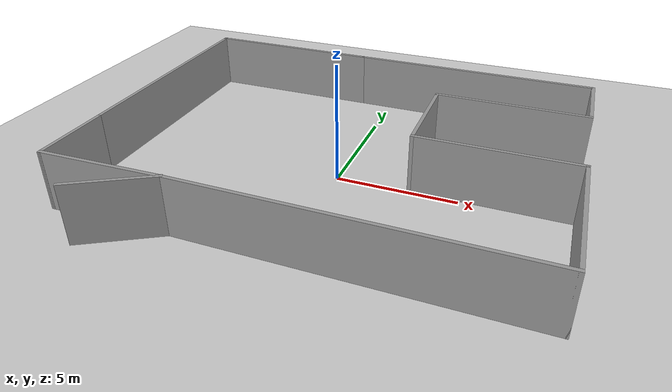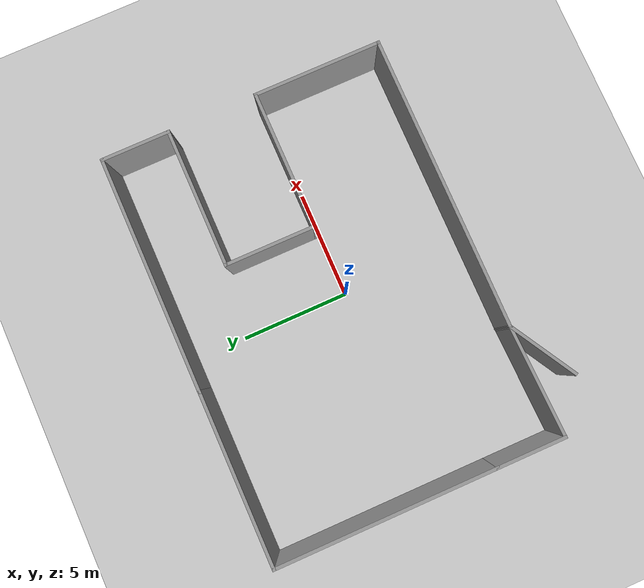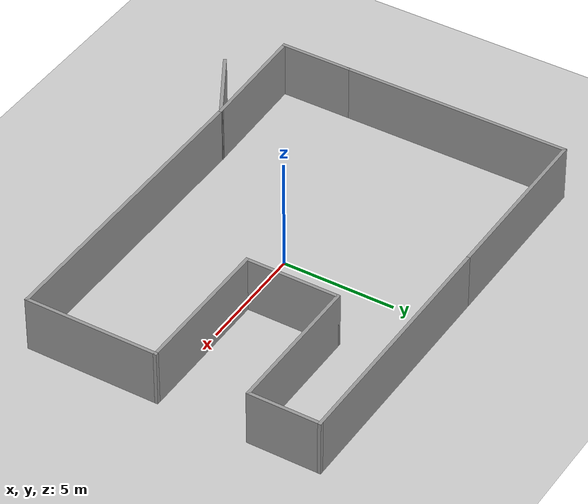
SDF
<?xml version="1.0" ?>
<sdf version="1.5">
  <world name="default">
    <!-- A global light source -->
    <include>
      <uri>model://sun</uri>
    </include>
<!-- A ground plane -->
    <include>
      <uri>model://ground_plane</uri>
    </include>
    <!-- include orchard model-->
    <include>
      <uri>model://closed_world2</uri>
	<name> closed_world2 </name>
	<pose> 0 0 0 0 0 0 </pose>
    </include>
  </world>
</sdf>

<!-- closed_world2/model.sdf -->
<sdf version='1.6'>
  <model name='closed_world2'>
    <pose frame=''>1.18891 2.50377 0 0 -0 0</pose>
    <link name='Wall_0'>
      <collision name='Wall_0_Collision'>
        <geometry>
          <box>
            <size>13.75 0.15 2.5</size>
          </box>
        </geometry>
        <pose frame=''>0 0 1.25 0 -0 0</pose>
      </collision>
      <visual name='Wall_0_Visual'>
        <pose frame=''>0 0 1.25 0 -0 0</pose>
        <geometry>
          <box>
            <size>13.75 0.15 2.5</size>
          </box>
        </geometry>
        <material>
          <script>
            <uri>file://media/materials/scripts/gazebo.material</uri>
            <name>Gazebo/Grey</name>
          </script>
          <ambient>1 1 1 1</ambient>
        </material>
        <meta>
          <layer>0</layer>
        </meta>
      </visual>
      <pose frame=''>2.55109 -5.67377 0 0 -0 0</pose>
    </link>
    <link name='Wall_1'>
      <collision name='Wall_1_Collision'>
        <geometry>
          <box>
            <size>6 0.15 2.5</size>
          </box>
        </geometry>
        <pose frame=''>0 0 1.25 0 -0 0</pose>
      </collision>
      <visual name='Wall_1_Visual'>
        <pose frame=''>0 0 1.25 0 -0 0</pose>
        <geometry>
          <box>
            <size>6 0.15 2.5</size>
          </box>
        </geometry>
        <material>
          <script>
            <uri>file://media/materials/scripts/gazebo.material</uri>
            <name>Gazebo/Grey</name>
          </script>
          <ambient>1 1 1 1</ambient>
        </material>
        <meta>
          <layer>0</layer>
        </meta>
      </visual>
      <pose frame=''>9.35109 -2.74877 0 0 -0 1.5708</pose>
    </link>
    <link name='Wall_10'>
      <collision name='Wall_10_Collision'>
        <geometry>
          <box>
            <size>5.25221 0.15 2.5</size>
          </box>
        </geometry>
        <pose frame=''>0 0 1.25 0 -0 0</pose>
      </collision>
      <visual name='Wall_10_Visual'>
        <pose frame=''>0 0 1.25 0 -0 0</pose>
        <geometry>
          <box>
            <size>5.25221 0.15 2.5</size>
          </box>
        </geometry>
        <material>
          <script>
            <uri>file://media/materials/scripts/gazebo.material</uri>
            <name>Gazebo/Grey</name>
          </script>
          <ambient>1 1 1 1</ambient>
        </material>
        <meta>
          <layer>0</layer>
        </meta>
      </visual>
      <pose frame=''>-6.79891 -5.74877 0 0 -0 0.029403</pose>
    </link>
    <link name='Wall_11'>
      <collision name='Wall_11_Collision'>
        <geometry>
          <box>
            <size>3.5 0.15 2.5</size>
          </box>
        </geometry>
        <pose frame=''>0 0 1.25 0 -0 0</pose>
      </collision>
      <visual name='Wall_11_Visual'>
        <pose frame=''>0 0 1.25 0 -0 0</pose>
        <geometry>
          <box>
            <size>3.5 0.15 2.5</size>
          </box>
        </geometry>
        <material>
          <script>
            <uri>file://media/materials/scripts/gazebo.material</uri>
            <name>Gazebo/Grey</name>
          </script>
          <ambient>0 0 0 1</ambient>
        </material>
        <meta>
          <layer>0</layer>
        </meta>
      </visual>
      <pose frame=''>-5.69951 -6.51127 0 0 -0 -2.61799</pose>
    </link>
    <link name='Wall_2'>
      <collision name='Wall_2_Collision'>
        <geometry>
          <box>
            <size>6.5 0.15 2.5</size>
          </box>
        </geometry>
        <pose frame=''>0 0 1.25 0 -0 0</pose>
      </collision>
      <visual name='Wall_2_Visual'>
        <pose frame=''>0 0 1.25 0 -0 0</pose>
        <geometry>
          <box>
            <size>6.5 0.15 2.5</size>
          </box>
        </geometry>
        <material>
          <script>
            <uri>file://media/materials/scripts/gazebo.material</uri>
            <name>Gazebo/Grey</name>
          </script>
          <ambient>1 1 1 1</ambient>
        </material>
        <meta>
          <layer>0</layer>
        </meta>
      </visual>
      <pose frame=''>6.17609 0.176226 0 0 -0 3.14159</pose>
    </link>
    <link name='Wall_3'>
      <collision name='Wall_3_Collision'>
        <geometry>
          <box>
            <size>4.25 0.15 2.5</size>
          </box>
        </geometry>
        <pose frame=''>0 0 1.25 0 -0 0</pose>
      </collision>
      <visual name='Wall_3_Visual'>
        <pose frame=''>0 0 1.25 0 -0 0</pose>
        <geometry>
          <box>
            <size>4.25 0.15 2.5</size>
          </box>
        </geometry>
        <material>
          <script>
            <uri>file://media/materials/scripts/gazebo.material</uri>
            <name>Gazebo/Grey</name>
          </script>
          <ambient>1 1 1 1</ambient>
        </material>
        <meta>
          <layer>0</layer>
        </meta>
      </visual>
      <pose frame=''>3.00109 2.22623 0 0 -0 1.5708</pose>
    </link>
    <link name='Wall_4'>
      <collision name='Wall_4_Collision'>
        <geometry>
          <box>
            <size>6.5 0.15 2.5</size>
          </box>
        </geometry>
        <pose frame=''>0 0 1.25 0 -0 0</pose>
      </collision>
      <visual name='Wall_4_Visual'>
        <pose frame=''>0 0 1.25 0 -0 0</pose>
        <geometry>
          <box>
            <size>6.5 0.15 2.5</size>
          </box>
        </geometry>
        <material>
          <script>
            <uri>file://media/materials/scripts/gazebo.material</uri>
            <name>Gazebo/Grey</name>
          </script>
          <ambient>1 1 1 1</ambient>
        </material>
        <meta>
          <layer>0</layer>
        </meta>
      </visual>
      <pose frame=''>6.17609 4.27623 0 0 -0 0</pose>
    </link>
    <link name='Wall_5'>
      <collision name='Wall_5_Collision'>
        <geometry>
          <box>
            <size>3.25 0.15 2.5</size>
          </box>
        </geometry>
        <pose frame=''>0 0 1.25 0 -0 0</pose>
      </collision>
      <visual name='Wall_5_Visual'>
        <pose frame=''>0 0 1.25 0 -0 0</pose>
        <geometry>
          <box>
            <size>3.25 0.15 2.5</size>
          </box>
        </geometry>
        <material>
          <script>
            <uri>file://media/materials/scripts/gazebo.material</uri>
            <name>Gazebo/Grey</name>
          </script>
          <ambient>1 1 1 1</ambient>
        </material>
        <meta>
          <layer>0</layer>
        </meta>
      </visual>
      <pose frame=''>9.35109 5.82623 0 0 -0 1.5708</pose>
    </link>
    <link name='Wall_6'>
      <collision name='Wall_6_Collision'>
        <geometry>
          <box>
            <size>11 0.15 2.5</size>
          </box>
        </geometry>
        <pose frame=''>0 0 1.25 0 -0 0</pose>
      </collision>
      <visual name='Wall_6_Visual'>
        <pose frame=''>0 0 1.25 0 -0 0</pose>
        <geometry>
          <box>
            <size>11 0.15 2.5</size>
          </box>
        </geometry>
        <material>
          <script>
            <uri>file://media/materials/scripts/gazebo.material</uri>
            <name>Gazebo/Grey</name>
          </script>
          <ambient>1 1 1 1</ambient>
        </material>
        <meta>
          <layer>0</layer>
        </meta>
      </visual>
      <pose frame=''>3.92609 7.37623 0 0 -0 3.14159</pose>
    </link>
    <link name='Wall_7'>
      <collision name='Wall_7_Collision'>
        <geometry>
          <box>
            <size>8 0.15 2.5</size>
          </box>
        </geometry>
        <pose frame=''>0 0 1.25 0 -0 0</pose>
      </collision>
      <visual name='Wall_7_Visual'>
        <pose frame=''>0 0 1.25 0 -0 0</pose>
        <geometry>
          <box>
            <size>8 0.15 2.5</size>
          </box>
        </geometry>
        <material>
          <script>
            <uri>file://media/materials/scripts/gazebo.material</uri>
            <name>Gazebo/Grey</name>
          </script>
          <ambient>1 1 1 1</ambient>
        </material>
        <meta>
          <layer>0</layer>
        </meta>
      </visual>
      <pose frame=''>-5.42391 7.37623 0 0 -0 3.14159</pose>
    </link>
    <link name='Wall_8'>
      <collision name='Wall_8_Collision'>
        <geometry>
          <box>
            <size>10.25 0.15 2.5</size>
          </box>
        </geometry>
        <pose frame=''>0 0 1.25 0 -0 0</pose>
      </collision>
      <visual name='Wall_8_Visual'>
        <pose frame=''>0 0 1.25 0 -0 0</pose>
        <geometry>
          <box>
            <size>10.25 0.15 2.5</size>
          </box>
        </geometry>
        <material>
          <script>
            <uri>file://media/materials/scripts/gazebo.material</uri>
            <name>Gazebo/Grey</name>
          </script>
          <ambient>1 1 1 1</ambient>
        </material>
        <meta>
          <layer>0</layer>
        </meta>
      </visual>
      <pose frame=''>-9.34891 2.32623 0 0 -0 -1.5708</pose>
    </link>
    <link name='Wall_9'>
      <collision name='Wall_9_Collision'>
        <geometry>
          <box>
            <size>3.25 0.15 2.5</size>
          </box>
        </geometry>
        <pose frame=''>0 0 1.25 0 -0 0</pose>
      </collision>
      <visual name='Wall_9_Visual'>
        <pose frame=''>0 0 1.25 0 -0 0</pose>
        <geometry>
          <box>
            <size>3.25 0.15 2.5</size>
          </box>
        </geometry>
        <material>
          <script>
            <uri>file://media/materials/scripts/gazebo.material</uri>
            <name>Gazebo/Grey</name>
          </script>
          <ambient>1 1 1 1</ambient>
        </material>
        <meta>
          <layer>0</layer>
        </meta>
      </visual>
      <pose frame=''>-9.34891 -4.27377 0 0 -0 -1.5708</pose>
    </link>
    <static>1</static>
  </model>
</sdf>
